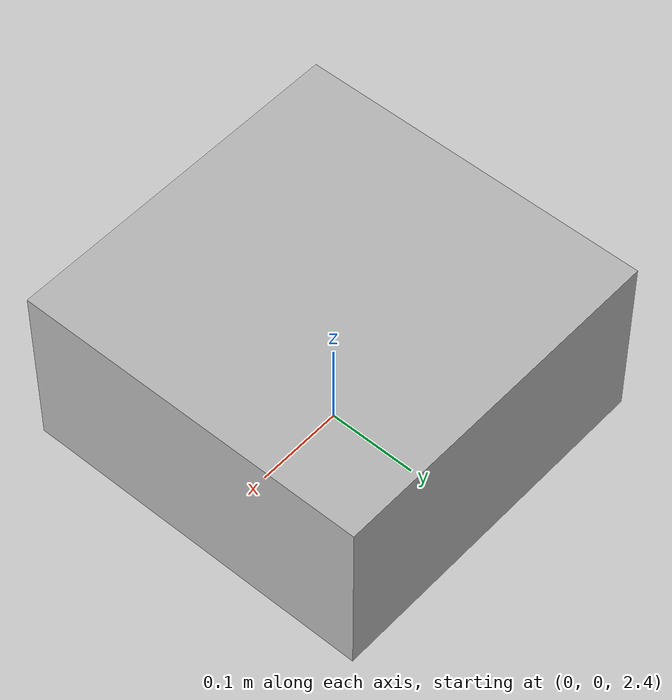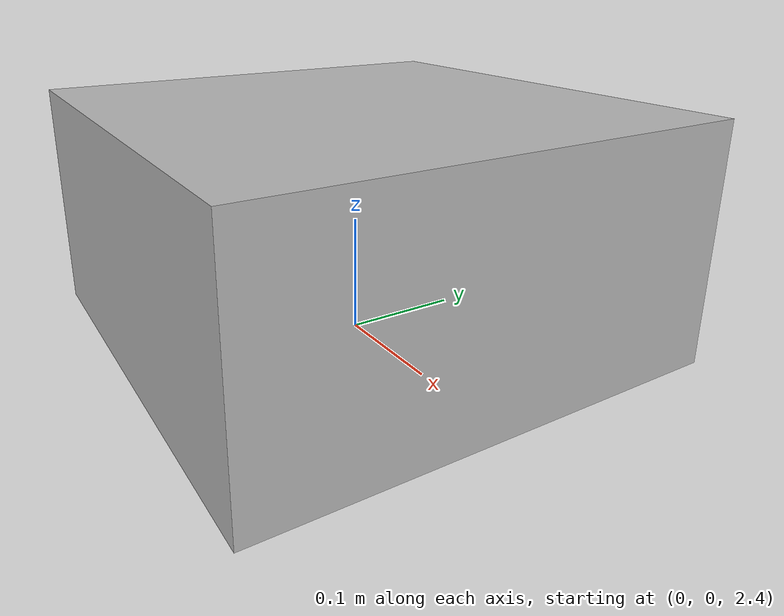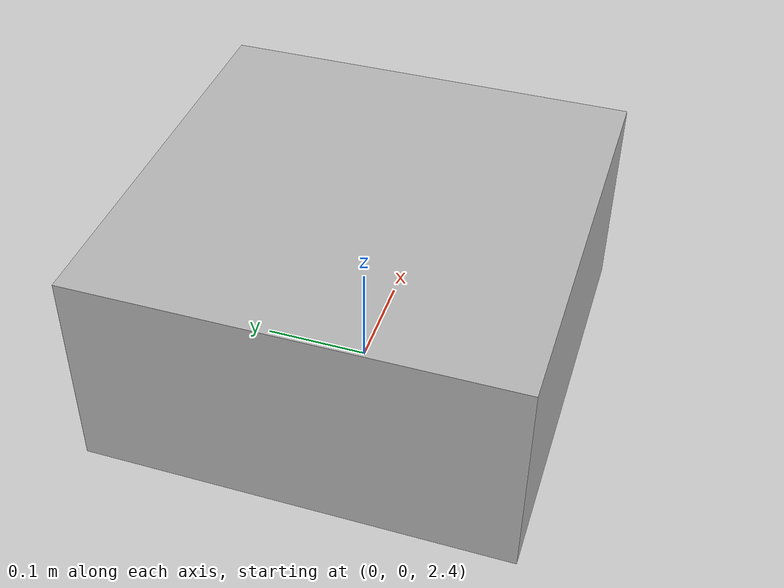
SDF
<?xml version='1.0'?>
<sdf version="1.4">
<model name="sample">

  <joint name="fixed to ground" type="revolute">
    <child>bed</child>
    <parent>world</parent>
    <axis>
      <xyz>0 0 1</xyz>
      <limit>
        <lower>0</lower>
        <upper>0</upper>
      </limit>
    </axis>
  </joint>

  <link name="bed">
    <pose>0 0 2.5 0 0 0</pose>
    <visual name="visual">
      <geometry>
        <box>
          <size>0.4 0.4 0.2</size>
        </box>
      </geometry>
    </visual>

    <collision name="collision">
      <geometry>
        <box>
          <size>0.4 0.4 0.2</size>
        </box>
      </geometry>
    </collision>

    <inertial>
      <pose>0 0 0 0 0 0</pose>
      <mass>1</mass>
      <inertia>
        <ixx>0.01</ixx>
        <ixy>0</ixy>
        <ixz>0</ixz>
        <iyy>0.01</iyy>
        <iyz>0</iyz>
        <izz>0.01</izz>
      </inertia>
    </inertial>
  </link>

  <!--plugin name="model_push" filename="libmodel_push.so"/-->
</model>
</sdf>
